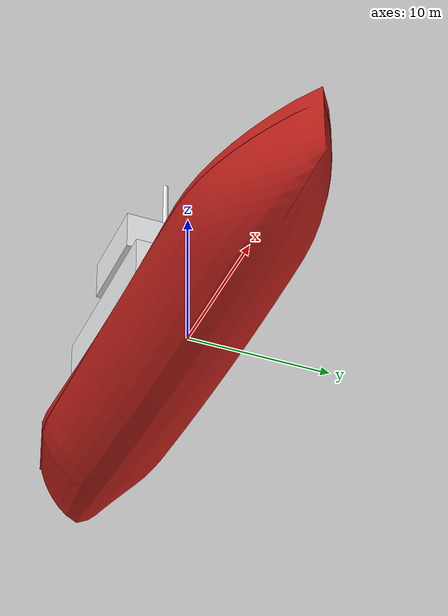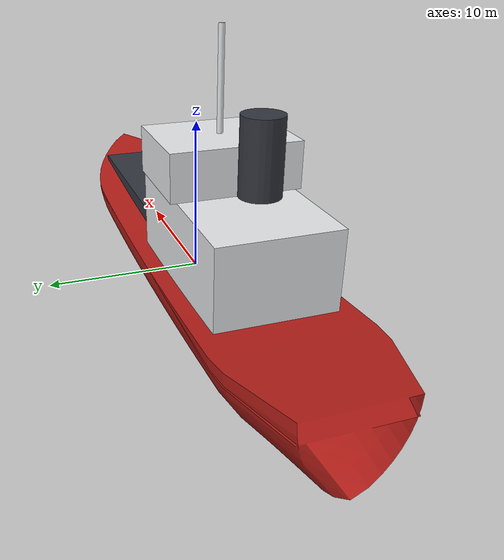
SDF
<?xml version="1.0" ?>
<sdf version="1.6">
  <model name="ship">
    <static>true</static>
    <link name="hull">

      <visual name="hull_visual">
        <geometry>
          <mesh>
            <uri>model://ship/meshes/hull.dae</uri>
            <scale>1 1 1</scale>
          </mesh>
        </geometry>
      </visual>

      <!-- Collision is a plain box: the lofted hull would be needless work for
           the physics engine and nothing needs to touch it precisely. -->
      <collision name="hull_collision">
        <pose>0 0 -0.10 0 0 0</pose>
        <geometry><box><size>42.00 9.00 5.00</size></box></geometry>
      </collision>

      <visual name="deckhouse_visual">
        <pose>-6.72 0.00 5.00 0 0 0</pose>
        <geometry><box><size>12.60 7.02 5.20</size></box></geometry>
        <material>
          <ambient>0.86 0.87 0.88 1</ambient><diffuse>0.90 0.91 0.92 1</diffuse>
        </material>
      </visual>
      <collision name="deckhouse_collision">
        <pose>-6.72 0.00 5.00 0 0 0</pose>
        <geometry><box><size>12.60 7.02 5.20</size></box></geometry>
      </collision>

      <visual name="bridge_visual">
        <pose>-4.20 0.00 9.00 0 0 0</pose>
        <geometry><box><size>5.88 7.74 2.80</size></box></geometry>
        <material>
          <ambient>0.86 0.87 0.88 1</ambient><diffuse>0.90 0.91 0.92 1</diffuse>
        </material>
      </visual>
      <collision name="bridge_collision">
        <pose>-4.20 0.00 9.00 0 0 0</pose>
        <geometry><box><size>5.88 7.74 2.80</size></box></geometry>
      </collision>

      <visual name="hatch_visual">
        <pose>8.40 0.00 2.90 0 0 0</pose>
        <geometry><box><size>14.28 5.40 1.00</size></box></geometry>
        <material>
          <ambient>0.15 0.16 0.18 1</ambient><diffuse>0.20 0.21 0.24 1</diffuse>
        </material>
      </visual>
      <collision name="hatch_collision">
        <pose>8.40 0.00 2.90 0 0 0</pose>
        <geometry><box><size>14.28 5.40 1.00</size></box></geometry>
      </collision>

      <visual name="funnel_visual">
        <pose>-10.08 0.00 10.80 0 0 0</pose>
        <geometry><cylinder><radius>1.15</radius><length>4.20</length></cylinder></geometry>
        <material>
          <ambient>0.15 0.16 0.18 1</ambient><diffuse>0.20 0.21 0.24 1</diffuse>
        </material>
      </visual>

      <visual name="mast_visual">
        <pose>-4.20 0.00 13.40 0 0 0</pose>
        <geometry><cylinder><radius>0.18</radius><length>6.00</length></cylinder></geometry>
        <material>
          <ambient>0.86 0.87 0.88 1</ambient><diffuse>0.90 0.91 0.92 1</diffuse>
        </material>
      </visual>

    </link>
  </model>
</sdf>
